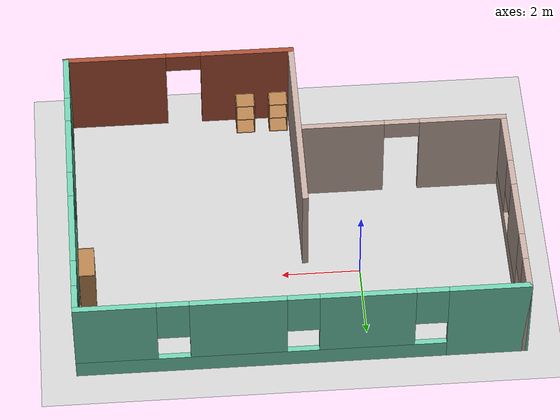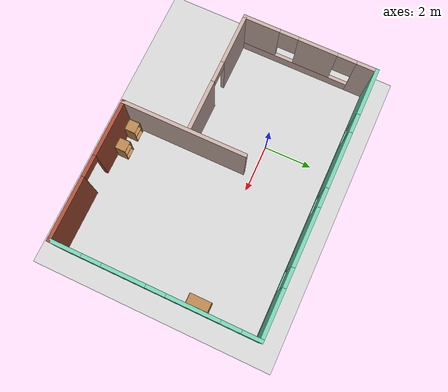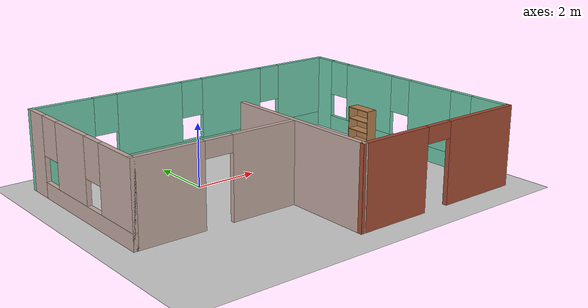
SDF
<sdf version="1.6">
 <world name="default">
  <physics name="default_physics" default="0" type="ode">
   <ode>
    <solver>
     <type>quick</type>
     <iters>50</iters>
     <friction_model>cone_model</friction_model>
     <sor>1.3</sor>
     <use_dynamic_moi_rescaling>0</use_dynamic_moi_rescaling>
    </solver>
    <constraints>
     <cfm>0</cfm>
     <erp>0.2</erp>
     <contact_max_correcting_vel>100</contact_max_correcting_vel>
     <contact_surface_layer>0.001</contact_surface_layer>
    </constraints>
   </ode>
   <max_step_size>0.001</max_step_size>
   <real_time_factor>1</real_time_factor>
   <real_time_update_rate>1000</real_time_update_rate>
  </physics>
  <light name="sun" type="directional">
   <pose>0 0 10 0 -0 0</pose>
   <diffuse>0.8 0.8 0.8 1</diffuse>
   <specular>0.2 0.2 0.2 1</specular>
   <attenuation>
    <range>1000</range>
    <constant>0.9</constant>
    <linear>0.01</linear>
    <quadratic>0.001</quadratic>
   </attenuation>
   <direction>-0.5 0.1 -0.9</direction>
  </light>
  <model name="ground_plane">
   <static>1</static>
   <link name="link">
    <collision name="collision">
     <geometry><plane><normal>0 0 1</normal><size>100 100</size></plane></geometry>
     <surface><friction><ode><mu>100</mu><mu2>50</mu2></ode></friction></surface>
    </collision>
    <visual name="visual">
     <cast_shadows>0</cast_shadows>
     <geometry><plane><normal>0 0 1</normal><size>100 100</size></plane></geometry>
     <material>
      <script><uri>file://media/materials/scripts/gazebo.material</uri><name>Gazebo/Grey</name></script>
     </material>
    </visual>
   </link>
  </model>
  <gravity>0 0 -9.8</gravity>
  <magnetic_field>6e-06 2.3e-05 -4.2e-05</magnetic_field>
  <atmosphere type="adiabatic"/>
  <physics name="default_physics" default="0" type="ode">
   <max_step_size>0.001</max_step_size>
   <real_time_factor>1</real_time_factor>
   <real_time_update_rate>1000</real_time_update_rate>
  </physics>
  <scene><ambient>0.4 0.4 0.4 1</ambient><background>0.7 0.7 0.7 1</background><shadows>1</shadows></scene>
  <spherical_coordinates>
   <surface_model>EARTH_WGS84</surface_model>
   <latitude_deg>0</latitude_deg>
   <longitude_deg>0</longitude_deg>
   <elevation>0</elevation>
   <heading_deg>0</heading_deg>
  </spherical_coordinates>
  <model name="simple_apartment">
   <pose>1.6744 -1.36599 0 0 -0 0</pose>
   <link name="Wall_0">
    <pose>-5.55 1.37501 0 0 -0 -1.5708</pose>
    <visual name="Wall_0_Visual_0">
     <pose>-2.41953 0 1.25 0 -0 0</pose>
     <geometry><box><size>0.910939 0.15 2.5</size></box></geometry>
     <material>
      <script><uri>file://media/materials/scripts/gazebo.material</uri><name>Gazebo/Grey</name></script>
      <ambient>0.760784 0.662745 0.627451 1</ambient>
     </material>
     <meta><layer>0</layer></meta>
    </visual>
    <collision name="Wall_0_Collision_0">
     <geometry><box><size>0.910939 0.15 2.5</size></box></geometry>
     <pose>-2.41953 0 1.25 0 -0 0</pose>
    </collision>
    <visual name="Wall_0_Visual_1">
     <pose>0.45547 0 0.25 0 -0 0</pose>
     <geometry><box><size>4.83906 0.15 0.5</size></box></geometry>
     <material>
      <script><uri>file://media/materials/scripts/gazebo.material</uri><name>Gazebo/Grey</name></script>
      <ambient>0.760784 0.662745 0.627451 1</ambient>
     </material>
     <meta><layer>0</layer></meta>
    </visual>
    <collision name="Wall_0_Collision_1">
     <geometry><box><size>4.83906 0.15 0.5</size></box></geometry>
     <pose>0.45547 0 0.25 0 -0 0</pose>
    </collision>
    <visual name="Wall_0_Visual_2">
     <pose>-0.340452 0 1.5 0 -0 0</pose>
     <geometry><box><size>1.64722 0.15 2</size></box></geometry>
     <material>
      <script><uri>file://media/materials/scripts/gazebo.material</uri><name>Gazebo/Grey</name></script>
      <ambient>0.760784 0.662745 0.627451 1</ambient>
     </material>
     <meta><layer>0</layer></meta>
    </visual>
    <collision name="Wall_0_Collision_2">
     <geometry><box><size>1.64722 0.15 2</size></box></geometry>
     <pose>-0.340452 0 1.5 0 -0 0</pose>
    </collision>
    <visual name="Wall_0_Visual_3">
     <pose>2.07908 0 1.5 0 -0 0</pose>
     <geometry><box><size>1.59184 0.15 2</size></box></geometry>
     <material>
      <script><uri>file://media/materials/scripts/gazebo.material</uri><name>Gazebo/Grey</name></script>
      <ambient>0.760784 0.662745 0.627451 1</ambient>
     </material>
     <meta><layer>0</layer></meta>
    </visual>
    <collision name="Wall_0_Collision_3">
     <geometry><box><size>1.59184 0.15 2</size></box></geometry>
     <pose>2.07908 0 1.5 0 -0 0</pose>
    </collision>
    <visual name="Wall_0_Visual_4">
     <pose>-1.56406 0 1.9 0 -0 0</pose>
     <geometry><box><size>0.8 0.15 1.2</size></box></geometry>
     <material>
      <script><uri>file://media/materials/scripts/gazebo.material</uri><name>Gazebo/Grey</name></script>
      <ambient>0.760784 0.662745 0.627451 1</ambient>
     </material>
     <meta><layer>0</layer></meta>
    </visual>
    <collision name="Wall_0_Collision_4">
     <geometry><box><size>0.8 0.15 1.2</size></box></geometry>
     <pose>-1.56406 0 1.9 0 -0 0</pose>
    </collision>
    <visual name="Wall_0_Visual_5">
     <pose>0.883157 0 1.9 0 -0 0</pose>
     <geometry><box><size>0.8 0.15 1.2</size></box></geometry>
     <material>
      <script><uri>file://media/materials/scripts/gazebo.material</uri><name>Gazebo/Grey</name></script>
      <ambient>0.760784 0.662745 0.627451 1</ambient>
     </material>
     <meta><layer>0</layer></meta>
    </visual>
    <collision name="Wall_0_Collision_5">
     <geometry><box><size>0.8 0.15 1.2</size></box></geometry>
     <pose>0.883157 0 1.9 0 -0 0</pose>
    </collision>
   </link>
   <link name="Wall_2">
    <pose>-2e-06 4.17501 0 0 -0 0</pose>
    <visual name="Wall_2_Visual_0">
     <pose>-4.60364 0 1.25 0 -0 0</pose>
     <geometry><box><size>2.04272 0.15 2.5</size></box></geometry>
     <material>
      <script><uri>file://media/materials/scripts/gazebo.material</uri><name>Gazebo/Grey</name></script>
      <ambient>0.435294 0.796078 0.67451 1</ambient>
     </material>
     <meta><layer>0</layer></meta>
    </visual>
    <collision name="Wall_2_Collision_0">
     <geometry><box><size>2.04272 0.15 2.5</size></box></geometry>
     <pose>-4.60364 0 1.25 0 -0 0</pose>
    </collision>
    <visual name="Wall_2_Visual_1">
     <pose>1.02136 0 0.25 0 -0 0</pose>
     <geometry><box><size>9.20728 0.15 0.5</size></box></geometry>
     <material>
      <script><uri>file://media/materials/scripts/gazebo.material</uri><name>Gazebo/Grey</name></script>
      <ambient>0.435294 0.796078 0.67451 1</ambient>
     </material>
     <meta><layer>0</layer></meta>
    </visual>
    <collision name="Wall_2_Collision_1">
     <geometry><box><size>9.20728 0.15 0.5</size></box></geometry>
     <pose>1.02136 0 0.25 0 -0 0</pose>
    </collision>
    <visual name="Wall_2_Visual_2">
     <pose>-1.59956 0 1.5 0 -0 0</pose>
     <geometry><box><size>2.36542 0.15 2</size></box></geometry>
     <material>
      <script><uri>file://media/materials/scripts/gazebo.material</uri><name>Gazebo/Grey</name></script>
      <ambient>0.435294 0.796078 0.67451 1</ambient>
     </material>
     <meta><layer>0</layer></meta>
    </visual>
    <collision name="Wall_2_Collision_2">
     <geometry><box><size>2.36542 0.15 2</size></box></geometry>
     <pose>-1.59956 0 1.5 0 -0 0</pose>
    </collision>
    <visual name="Wall_2_Visual_3">
     <pose>1.57916 0 1.5 0 -0 0</pose>
     <geometry><box><size>2.39202 0.15 2</size></box></geometry>
     <material>
      <script><uri>file://media/materials/scripts/gazebo.material</uri><name>Gazebo/Grey</name></script>
      <ambient>0.435294 0.796078 0.67451 1</ambient>
     </material>
     <meta><layer>0</layer></meta>
    </visual>
    <collision name="Wall_2_Collision_3">
     <geometry><box><size>2.39202 0.15 2</size></box></geometry>
     <pose>1.57916 0 1.5 0 -0 0</pose>
    </collision>
    <visual name="Wall_2_Visual_4">
     <pose>4.60008 0 1.5 0 -0 0</pose>
     <geometry><box><size>2.04983 0.15 2</size></box></geometry>
     <material>
      <script><uri>file://media/materials/scripts/gazebo.material</uri><name>Gazebo/Grey</name></script>
      <ambient>0.435294 0.796078 0.67451 1</ambient>
     </material>
     <meta><layer>0</layer></meta>
    </visual>
    <collision name="Wall_2_Collision_4">
     <geometry><box><size>2.04983 0.15 2</size></box></geometry>
     <pose>4.60008 0 1.5 0 -0 0</pose>
    </collision>
    <visual name="Wall_2_Visual_5">
     <pose>-3.18228 0 1.9 0 -0 0</pose>
     <geometry><box><size>0.8 0.15 1.2</size></box></geometry>
     <material>
      <script><uri>file://media/materials/scripts/gazebo.material</uri><name>Gazebo/Grey</name></script>
      <ambient>0.435294 0.796078 0.67451 1</ambient>
     </material>
     <meta><layer>0</layer></meta>
    </visual>
    <collision name="Wall_2_Collision_5">
     <geometry><box><size>0.8 0.15 1.2</size></box></geometry>
     <pose>-3.18228 0 1.9 0 -0 0</pose>
    </collision>
    <visual name="Wall_2_Visual_6">
     <pose>-0.016853 0 1.9 0 -0 0</pose>
     <geometry><box><size>0.8 0.15 1.2</size></box></geometry>
     <material>
      <script><uri>file://media/materials/scripts/gazebo.material</uri><name>Gazebo/Grey</name></script>
      <ambient>0.435294 0.796078 0.67451 1</ambient>
     </material>
     <meta><layer>0</layer></meta>
    </visual>
    <collision name="Wall_2_Collision_6">
     <geometry><box><size>0.8 0.15 1.2</size></box></geometry>
     <pose>-0.016853 0 1.9 0 -0 0</pose>
    </collision>
    <visual name="Wall_2_Visual_7">
     <pose>3.17517 0 1.9 0 -0 0</pose>
     <geometry><box><size>0.8 0.15 1.2</size></box></geometry>
     <material>
      <script><uri>file://media/materials/scripts/gazebo.material</uri><name>Gazebo/Grey</name></script>
      <ambient>0.435294 0.796078 0.67451 1</ambient>
     </material>
     <meta><layer>0</layer></meta>
    </visual>
    <collision name="Wall_2_Collision_7">
     <geometry><box><size>0.8 0.15 1.2</size></box></geometry>
     <pose>3.17517 0 1.9 0 -0 0</pose>
    </collision>
   </link>
   <link name="Wall_3">
    <pose>5.5498 -0 0 0 -0 -1.57084</pose>
    <visual name="Wall_3_Visual_0">
     <pose>-3.83444 0 1.25 0 -0 0</pose>
     <geometry><box><size>0.831127 0.15 2.5</size></box></geometry>
     <material>
      <script><uri>file://media/materials/scripts/gazebo.material</uri><name>Gazebo/Grey</name></script>
      <ambient>0.435294 0.796078 0.67451 1</ambient>
     </material>
     <meta><layer>0</layer></meta>
    </visual>
    <collision name="Wall_3_Collision_0">
     <geometry><box><size>0.831127 0.15 2.5</size></box></geometry>
     <pose>-3.83444 0 1.25 0 -0 0</pose>
    </collision>
    <visual name="Wall_3_Visual_1">
     <pose>0.415564 0 0.25 0 -0 0</pose>
     <geometry><box><size>7.66887 0.15 0.5</size></box></geometry>
     <material>
      <script><uri>file://media/materials/scripts/gazebo.material</uri><name>Gazebo/Grey</name></script>
      <ambient>0.435294 0.796078 0.67451 1</ambient>
     </material>
     <meta><layer>0</layer></meta>
    </visual>
    <collision name="Wall_3_Collision_1">
     <geometry><box><size>7.66887 0.15 0.5</size></box></geometry>
     <pose>0.415564 0 0.25 0 -0 0</pose>
    </collision>
    <visual name="Wall_3_Visual_2">
     <pose>-1.55586 0 1.5 0 -0 0</pose>
     <geometry><box><size>2.12603 0.15 2</size></box></geometry>
     <material>
      <script><uri>file://media/materials/scripts/gazebo.material</uri><name>Gazebo/Grey</name></script>
      <ambient>0.435294 0.796078 0.67451 1</ambient>
     </material>
     <meta><layer>0</layer></meta>
    </visual>
    <collision name="Wall_3_Collision_2">
     <geometry><box><size>2.12603 0.15 2</size></box></geometry>
     <pose>-1.55586 0 1.5 0 -0 0</pose>
    </collision>
    <visual name="Wall_3_Visual_3">
     <pose>1.18397 0 1.5 0 -0 0</pose>
     <geometry><box><size>1.75361 0.15 2</size></box></geometry>
     <material>
      <script><uri>file://media/materials/scripts/gazebo.material</uri><name>Gazebo/Grey</name></script>
      <ambient>0.435294 0.796078 0.67451 1</ambient>
     </material>
     <meta><layer>0</layer></meta>
    </visual>
    <collision name="Wall_3_Collision_3">
     <geometry><box><size>1.75361 0.15 2</size></box></geometry>
     <pose>1.18397 0 1.5 0 -0 0</pose>
    </collision>
    <visual name="Wall_3_Visual_4">
     <pose>3.55539 0 1.5 0 -0 0</pose>
     <geometry><box><size>1.38923 0.15 2</size></box></geometry>
     <material>
      <script><uri>file://media/materials/scripts/gazebo.material</uri><name>Gazebo/Grey</name></script>
      <ambient>0.435294 0.796078 0.67451 1</ambient>
     </material>
     <meta><layer>0</layer></meta>
    </visual>
    <collision name="Wall_3_Collision_4">
     <geometry><box><size>1.38923 0.15 2</size></box></geometry>
     <pose>3.55539 0 1.5 0 -0 0</pose>
    </collision>
    <visual name="Wall_3_Visual_5">
     <pose>-3.01887 0 1.9 0 -0 0</pose>
     <geometry><box><size>0.8 0.15 1.2</size></box></geometry>
     <material>
      <script><uri>file://media/materials/scripts/gazebo.material</uri><name>Gazebo/Grey</name></script>
      <ambient>0.435294 0.796078 0.67451 1</ambient>
     </material>
     <meta><layer>0</layer></meta>
    </visual>
    <collision name="Wall_3_Collision_5">
     <geometry><box><size>0.8 0.15 1.2</size></box></geometry>
     <pose>-3.01887 0 1.9 0 -0 0</pose>
    </collision>
    <visual name="Wall_3_Visual_6">
     <pose>-0.092839 0 1.9 0 -0 0</pose>
     <geometry><box><size>0.8 0.15 1.2</size></box></geometry>
     <material>
      <script><uri>file://media/materials/scripts/gazebo.material</uri><name>Gazebo/Grey</name></script>
      <ambient>0.435294 0.796078 0.67451 1</ambient>
     </material>
     <meta><layer>0</layer></meta>
    </visual>
    <collision name="Wall_3_Collision_6">
     <geometry><box><size>0.8 0.15 1.2</size></box></geometry>
     <pose>-0.092839 0 1.9 0 -0 0</pose>
    </collision>
    <visual name="Wall_3_Visual_7">
     <pose>2.46077 0 1.9 0 -0 0</pose>
     <geometry><box><size>0.8 0.15 1.2</size></box></geometry>
     <material>
      <script><uri>file://media/materials/scripts/gazebo.material</uri><name>Gazebo/Grey</name></script>
      <ambient>0.435294 0.796078 0.67451 1</ambient>
     </material>
     <meta><layer>0</layer></meta>
    </visual>
    <collision name="Wall_3_Collision_7">
     <geometry><box><size>0.8 0.15 1.2</size></box></geometry>
     <pose>2.46077 0 1.9 0 -0 0</pose>
    </collision>
   </link>
   <link name="Wall_4">
    <pose>2.6246 -4.17501 0 0 -0 3.14159</pose>
    <visual name="Wall_4_Visual_0">
     <pose>-1.66778 0 1.25 0 -0 0</pose>
     <geometry><box><size>2.66444 0.15 2.5</size></box></geometry>
     <material>
      <script><uri>file://media/materials/scripts/gazebo.material</uri><name>Gazebo/Bricks</name></script>
      <ambient>1 1 1 1</ambient>
     </material>
     <meta><layer>0</layer></meta>
    </visual>
    <collision name="Wall_4_Collision_0">
     <geometry><box><size>2.66444 0.15 2.5</size></box></geometry>
     <pose>-1.66778 0 1.25 0 -0 0</pose>
    </collision>
    <visual name="Wall_4_Visual_1">
     <pose>1.78222 0 1.25 0 -0 0</pose>
     <geometry><box><size>2.43556 0.15 2.5</size></box></geometry>
     <material>
      <script><uri>file://media/materials/scripts/gazebo.material</uri><name>Gazebo/Bricks</name></script>
      <ambient>1 1 1 1</ambient>
     </material>
     <meta><layer>0</layer></meta>
    </visual>
    <collision name="Wall_4_Collision_1">
     <geometry><box><size>2.43556 0.15 2.5</size></box></geometry>
     <pose>1.78222 0 1.25 0 -0 0</pose>
    </collision>
    <visual name="Wall_4_Visual_2">
     <pose>0.114437 0 2.25 0 -0 0</pose>
     <geometry><box><size>0.9 0.15 0.5</size></box></geometry>
     <material>
      <script><uri>file://media/materials/scripts/gazebo.material</uri><name>Gazebo/Bricks</name></script>
      <ambient>1 1 1 1</ambient>
     </material>
     <meta><layer>0</layer></meta>
    </visual>
    <collision name="Wall_4_Collision_2">
     <geometry><box><size>0.9 0.15 0.5</size></box></geometry>
     <pose>0.114437 0 2.25 0 -0 0</pose>
    </collision>
   </link>
   <link name="Wall_5">
    <collision name="Wall_5_Collision">
     <geometry><box><size>5.25 0.15 2.5</size></box></geometry>
     <pose>0 0 1.25 0 -0 0</pose>
    </collision>
    <visual name="Wall_5_Visual">
     <pose>0 0 1.25 0 -0 0</pose>
     <geometry><box><size>5.25 0.15 2.5</size></box></geometry>
     <material>
      <script><uri>file://media/materials/scripts/gazebo.material</uri><name>Gazebo/Grey</name></script>
      <ambient>0.760784 0.662745 0.627451 1</ambient>
     </material>
     <meta><layer>0</layer></meta>
    </visual>
    <pose>-0.3002 -1.625 0 0 -0 1.57072</pose>
   </link>
   <link name="Wall_7">
    <pose>-3 -1.42499 0 0 -0 0</pose>
    <visual name="Wall_7_Visual_0">
     <pose>-1.50894 0 1.25 0 -0 0</pose>
     <geometry><box><size>2.23212 0.15 2.5</size></box></geometry>
     <material>
      <script><uri>file://media/materials/scripts/gazebo.material</uri><name>Gazebo/Grey</name></script>
      <ambient>0.760784 0.662745 0.627451 1</ambient>
     </material>
     <meta><layer>0</layer></meta>
    </visual>
    <collision name="Wall_7_Collision_0">
     <geometry><box><size>2.23212 0.15 2.5</size></box></geometry>
     <pose>-1.50894 0 1.25 0 -0 0</pose>
    </collision>
    <visual name="Wall_7_Visual_1">
     <pose>1.56606 0 1.25 0 -0 0</pose>
     <geometry><box><size>2.11788 0.15 2.5</size></box></geometry>
     <material>
      <script><uri>file://media/materials/scripts/gazebo.material</uri><name>Gazebo/Grey</name></script>
      <ambient>0.760784 0.662745 0.627451 1</ambient>
     </material>
     <meta><layer>0</layer></meta>
    </visual>
    <collision name="Wall_7_Collision_1">
     <geometry><box><size>2.11788 0.15 2.5</size></box></geometry>
     <pose>1.56606 0 1.25 0 -0 0</pose>
    </collision>
    <visual name="Wall_7_Visual_2">
     <pose>0.057125 0 2.25 0 -0 0</pose>
     <geometry><box><size>0.9 0.15 0.5</size></box></geometry>
     <material>
      <script><uri>file://media/materials/scripts/gazebo.material</uri><name>Gazebo/Grey</name></script>
      <ambient>0.760784 0.662745 0.627451 1</ambient>
     </material>
     <meta><layer>0</layer></meta>
    </visual>
    <collision name="Wall_7_Collision_2">
     <geometry><box><size>0.9 0.15 0.5</size></box></geometry>
     <pose>0.057125 0 2.25 0 -0 0</pose>
    </collision>
   </link>
   <static>1</static>
  </model>
  <model name="bookshelf">
   <static>1</static>
   <link name="link">
    <inertial><mass>1</mass></inertial>
    <collision name="back">
     <pose>0 0.005 0.6 0 -0 0</pose>
     <geometry><box><size>0.9 0.01 1.2</size></box></geometry>
    </collision>
    <visual name="visual1">
     <pose>0 0.005 0.6 0 -0 0</pose>
     <geometry><box><size>0.9 0.01 1.2</size></box></geometry>
     <material>
      <script><uri>file://media/materials/scripts/gazebo.material</uri><name>Gazebo/Wood</name></script>
     </material>
    </visual>
    <collision name="left_side">
     <pose>0.45 -0.195 0.6 0 -0 0</pose>
     <geometry><box><size>0.02 0.4 1.2</size></box></geometry>
    </collision>
    <visual name="visual2">
     <pose>0.45 -0.195 0.6 0 -0 0</pose>
     <geometry><box><size>0.02 0.4 1.2</size></box></geometry>
     <material>
      <script><uri>file://media/materials/scripts/gazebo.material</uri><name>Gazebo/Wood</name></script>
     </material>
    </visual>
    <collision name="right_side">
     <pose>-0.45 -0.195 0.6 0 -0 0</pose>
     <geometry><box><size>0.02 0.4 1.2</size></box></geometry>
    </collision>
    <visual name="visual3">
     <pose>-0.45 -0.195 0.6 0 -0 0</pose>
     <geometry><box><size>0.02 0.4 1.2</size></box></geometry>
     <material>
      <script><uri>file://media/materials/scripts/gazebo.material</uri><name>Gazebo/Wood</name></script>
     </material>
    </visual>
    <collision name="bottom">
     <pose>0 -0.195 0.03 0 -0 0</pose>
     <geometry><box><size>0.88 0.4 0.06</size></box></geometry>
    </collision>
    <visual name="visual4">
     <pose>0 -0.195 0.03 0 -0 0</pose>
     <geometry><box><size>0.88 0.4 0.06</size></box></geometry>
     <material>
      <script><uri>file://media/materials/scripts/gazebo.material</uri><name>Gazebo/Wood</name></script>
     </material>
    </visual>
    <collision name="top">
     <pose>0 -0.195 1.19 0 -0 0</pose>
     <geometry><box><size>0.88 0.4 0.02</size></box></geometry>
    </collision>
    <visual name="visual5">
     <pose>0 -0.195 1.19 0 -0 0</pose>
     <geometry><box><size>0.88 0.4 0.02</size></box></geometry>
     <material>
      <script><uri>file://media/materials/scripts/gazebo.material</uri><name>Gazebo/Wood</name></script>
     </material>
    </visual>
    <collision name="low_shelf">
     <pose>0 -0.195 0.43 0 -0 0</pose>
     <geometry><box><size>0.88 0.4 0.02</size></box></geometry>
    </collision>
    <visual name="visual6">
     <pose>0 -0.195 0.43 0 -0 0</pose>
     <geometry><box><size>0.88 0.4 0.02</size></box></geometry>
     <material>
      <script><uri>file://media/materials/scripts/gazebo.material</uri><name>Gazebo/Wood</name></script>
     </material>
    </visual>
    <collision name="high_shelf">
     <pose>0 -0.195 0.8 0 -0 0</pose>
     <geometry><box><size>0.88 0.4 0.02</size></box></geometry>
    </collision>
    <visual name="visual7">
     <pose>0 -0.195 0.8 0 -0 0</pose>
     <geometry><box><size>0.88 0.4 0.02</size></box></geometry>
     <material>
      <script><uri>file://media/materials/scripts/gazebo.material</uri><name>Gazebo/Wood</name></script>
     </material>
    </visual>
   </link>
   <pose>7.12015 0.221057 0 0 0 -1.5708</pose>
  </model>
  <model name="cabinet">
   <static>1</static>
   <link name="cabinet_bottom_plate">
    <inertial>
     <pose>0 0 -1 0 -0 0</pose>
     <inertia><ixx>2.05</ixx><ixy>0</ixy><ixz>0</ixz><iyy>2.05</iyy><iyz>0</iyz><izz>2.05</izz></inertia>
     <mass>25</mass>
    </inertial>
    <collision name="cabinet_bottom_plate_geom">
     <pose>0 0 0.01 0 -0 0</pose>
     <geometry><box><size>0.45 0.45 0.02</size></box></geometry>
    </collision>
    <visual name="cabinet_bottom_plate_geom_visual">
     <pose>0 0 0.01 0 -0 0</pose>
     <geometry><box><size>0.45 0.45 0.02</size></box></geometry>
     <material>
      <script><uri>file://media/materials/scripts/gazebo.material</uri><name>Gazebo/Wood</name></script>
     </material>
    </visual>
    <collision name="cabinet_bottom_plate_geom_cabinet_back_plate">
     <pose>0.235 0 0.51 0 -0 0</pose>
     <geometry><box><size>0.02 0.45 1.02</size></box></geometry>
    </collision>
    <visual name="cabinet_bottom_plate_geom_cabinet_back_plate_visual">
     <pose>0.235 0 0.51 0 -0 0</pose>
     <geometry><box><size>0.02 0.45 1.02</size></box></geometry>
     <material>
      <script><uri>file://media/materials/scripts/gazebo.material</uri><name>Gazebo/Wood</name></script>
     </material>
    </visual>
    <collision name="cabinet_bottom_plate_geom_cabinet_left_plate">
     <pose>0 0.235 0.51 0 -0 0</pose>
     <geometry><box><size>0.45 0.02 1.02</size></box></geometry>
    </collision>
    <visual name="cabinet_bottom_plate_geom_cabinet_left_plate_visual">
     <pose>0 0.235 0.51 0 -0 0</pose>
     <geometry><box><size>0.45 0.02 1.02</size></box></geometry>
     <material>
      <script><uri>file://media/materials/scripts/gazebo.material</uri><name>Gazebo/Wood</name></script>
     </material>
    </visual>
    <collision name="cabinet_bottom_plate_geom_cabinet_middle_plate">
     <pose>0 0 0.51 0 -0 0</pose>
     <geometry><box><size>0.45 0.45 0.02</size></box></geometry>
    </collision>
    <visual name="cabinet_bottom_plate_geom_cabinet_middle_plate_visual">
     <pose>0 0 0.51 0 -0 0</pose>
     <geometry><box><size>0.45 0.45 0.02</size></box></geometry>
     <material>
      <script><uri>file://media/materials/scripts/gazebo.material</uri><name>Gazebo/Wood</name></script>
     </material>
    </visual>
    <collision name="cabinet_bottom_plate_geom_cabinet_right_plate">
     <pose>0 -0.235 0.51 0 -0 0</pose>
     <geometry><box><size>0.45 0.02 1.02</size></box></geometry>
    </collision>
    <visual name="cabinet_bottom_plate_geom_cabinet_right_plate_visual">
     <pose>0 -0.235 0.51 0 -0 0</pose>
     <geometry><box><size>0.45 0.02 1.02</size></box></geometry>
     <material>
      <script><uri>file://media/materials/scripts/gazebo.material</uri><name>Gazebo/Wood</name></script>
     </material>
    </visual>
    <collision name="cabinet_bottom_plate_geom_cabinet_top_plate">
     <pose>0 0 1.01 0 -0 0</pose>
     <geometry><box><size>0.45 0.45 0.02</size></box></geometry>
    </collision>
    <visual name="cabinet_bottom_plate_geom_cabinet_top_plate_visual">
     <pose>0 0 1.01 0 -0 0</pose>
     <geometry><box><size>0.45 0.45 0.02</size></box></geometry>
     <material>
      <script><uri>file://media/materials/scripts/gazebo.material</uri><name>Gazebo/Wood</name></script>
     </material>
    </visual>
   </link>
   <pose>1.7398 -5.20164 0 0 0 -1.5708</pose>
  </model>
  <model name="cabinet_0">
   <static>1</static>
   <link name="cabinet_bottom_plate">
    <inertial>
     <pose>0 0 -1 0 -0 0</pose>
     <inertia><ixx>2.05</ixx><ixy>0</ixy><ixz>0</ixz><iyy>2.05</iyy><iyz>0</iyz><izz>2.05</izz></inertia>
     <mass>25</mass>
    </inertial>
    <collision name="cabinet_bottom_plate_geom">
     <pose>0 0 0.01 0 -0 0</pose>
     <geometry><box><size>0.45 0.45 0.02</size></box></geometry>
    </collision>
    <visual name="cabinet_bottom_plate_geom_visual">
     <pose>0 0 0.01 0 -0 0</pose>
     <geometry><box><size>0.45 0.45 0.02</size></box></geometry>
     <material>
      <script><uri>file://media/materials/scripts/gazebo.material</uri><name>Gazebo/Wood</name></script>
     </material>
    </visual>
    <collision name="cabinet_bottom_plate_geom_cabinet_back_plate">
     <pose>0.235 0 0.51 0 -0 0</pose>
     <geometry><box><size>0.02 0.45 1.02</size></box></geometry>
    </collision>
    <visual name="cabinet_bottom_plate_geom_cabinet_back_plate_visual">
     <pose>0.235 0 0.51 0 -0 0</pose>
     <geometry><box><size>0.02 0.45 1.02</size></box></geometry>
     <material>
      <script><uri>file://media/materials/scripts/gazebo.material</uri><name>Gazebo/Wood</name></script>
     </material>
    </visual>
    <collision name="cabinet_bottom_plate_geom_cabinet_left_plate">
     <pose>0 0.235 0.51 0 -0 0</pose>
     <geometry><box><size>0.45 0.02 1.02</size></box></geometry>
    </collision>
    <visual name="cabinet_bottom_plate_geom_cabinet_left_plate_visual">
     <pose>0 0.235 0.51 0 -0 0</pose>
     <geometry><box><size>0.45 0.02 1.02</size></box></geometry>
     <material>
      <script><uri>file://media/materials/scripts/gazebo.material</uri><name>Gazebo/Wood</name></script>
     </material>
    </visual>
    <collision name="cabinet_bottom_plate_geom_cabinet_middle_plate">
     <pose>0 0 0.51 0 -0 0</pose>
     <geometry><box><size>0.45 0.45 0.02</size></box></geometry>
    </collision>
    <visual name="cabinet_bottom_plate_geom_cabinet_middle_plate_visual">
     <pose>0 0 0.51 0 -0 0</pose>
     <geometry><box><size>0.45 0.45 0.02</size></box></geometry>
     <material>
      <script><uri>file://media/materials/scripts/gazebo.material</uri><name>Gazebo/Wood</name></script>
     </material>
    </visual>
    <collision name="cabinet_bottom_plate_geom_cabinet_right_plate">
     <pose>0 -0.235 0.51 0 -0 0</pose>
     <geometry><box><size>0.45 0.02 1.02</size></box></geometry>
    </collision>
    <visual name="cabinet_bottom_plate_geom_cabinet_right_plate_visual">
     <pose>0 -0.235 0.51 0 -0 0</pose>
     <geometry><box><size>0.45 0.02 1.02</size></box></geometry>
     <material>
      <script><uri>file://media/materials/scripts/gazebo.material</uri><name>Gazebo/Wood</name></script>
     </material>
    </visual>
    <collision name="cabinet_bottom_plate_geom_cabinet_top_plate">
     <pose>0 0 1.01 0 -0 0</pose>
     <geometry><box><size>0.45 0.45 0.02</size></box></geometry>
    </collision>
    <visual name="cabinet_bottom_plate_geom_cabinet_top_plate_visual">
     <pose>0 0 1.01 0 -0 0</pose>
     <geometry><box><size>0.45 0.45 0.02</size></box></geometry>
     <material>
      <script><uri>file://media/materials/scripts/gazebo.material</uri><name>Gazebo/Wood</name></script>
     </material>
    </visual>
   </link>
   <pose>2.60011 -5.19706 0 0 0 -1.5708</pose>
  </model>
 </world>
</sdf>
